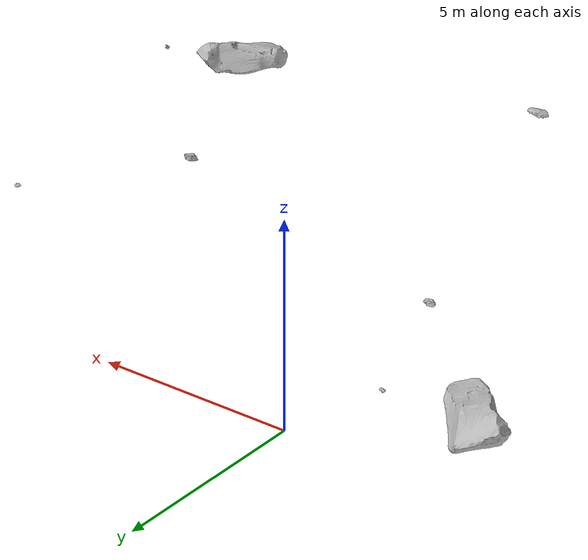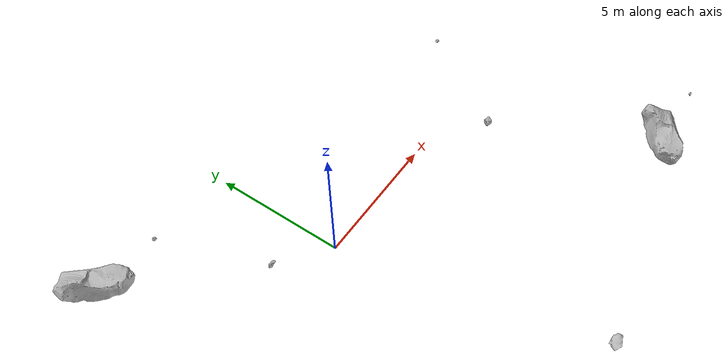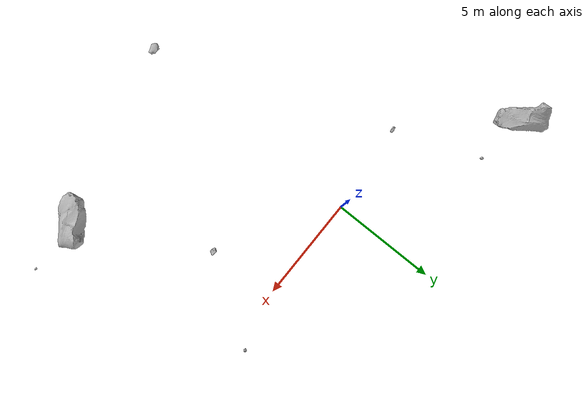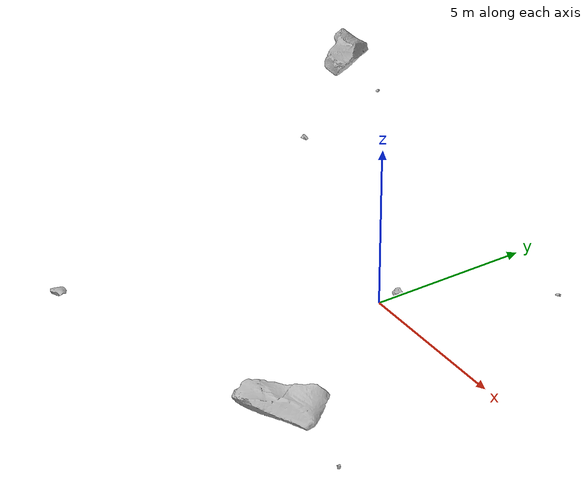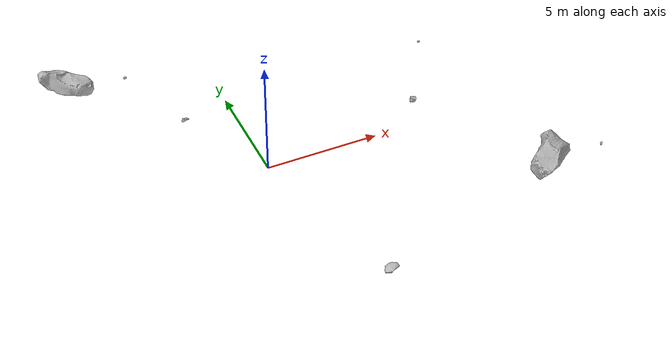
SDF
<sdf version="1.7">
 <world name="marsyard">
  <gravity>0 0 -9.81</gravity>
  <physics name="dart_physics" type="ignored">
   <max_step_size>0.003</max_step_size>
   <real_time_update_rate>333</real_time_update_rate>
   <real_time_factor>1.0</real_time_factor>
  </physics>
  <plugin filename="ignition-gazebo-physics-system" name="ignition::gazebo::systems::Physics"/>
  <plugin filename="ignition-gazebo-user-commands-system" name="ignition::gazebo::systems::UserCommands"/>
  <plugin filename="ignition-gazebo-scene-broadcaster-system" name="ignition::gazebo::systems::SceneBroadcaster"/>
  <plugin filename="ignition-gazebo-contact-system" name="ignition::gazebo::systems::Contact"/>
  <scene>
   <ambient>0.95 0.95 0.95 1</ambient>
   <background>0.70 0.70 0.70 1</background>
   <shadows>false</shadows>
  </scene>
  <light type="directional" name="sun">
   <cast_shadows>false</cast_shadows>
   <pose>0 0 30 0 0 0</pose>
   <diffuse>1 1 1 1</diffuse>
   <specular>0.15 0.15 0.15 1</specular>
   <direction>-0.35 0.1 -0.93</direction>
  </light>
  <model name="Rock_1">
   <static>true</static>
   <pose>7.3875 -7.9497 4.0000 0.0000 0.0000 0.7894</pose>
   <link name="link">
    <visual name="visual">
     <geometry><mesh><uri>package://rock_generator/rocks_ws/rock_4/meshes/rock_4.stl</uri></mesh></geometry>
    </visual>
    <collision name="collision">
     <geometry><mesh><uri>package://rock_generator/rocks_ws/rock_4/meshes/rock_4.stl</uri></mesh></geometry>
    </collision>
   </link>
  </model>
  <model name="Rock_2">
   <static>true</static>
   <pose>7.0543 0.4929 4.0000 0.0000 0.0000 -2.1552</pose>
   <link name="link">
    <visual name="visual">
     <geometry><mesh><uri>package://rock_generator/rocks_ws/rock_5/meshes/rock_5.stl</uri></mesh></geometry>
    </visual>
    <collision name="collision">
     <geometry><mesh><uri>package://rock_generator/rocks_ws/rock_5/meshes/rock_5.stl</uri></mesh></geometry>
    </collision>
   </link>
  </model>
  <model name="Rock_3">
   <static>true</static>
   <pose>4.8764 -2.8741 4.0000 0.0000 0.0000 -1.1982</pose>
   <link name="link">
    <visual name="visual">
     <geometry><mesh><uri>package://rock_generator/rocks_ws/rock_1/meshes/rock_1.stl</uri></mesh></geometry>
    </visual>
    <collision name="collision">
     <geometry><mesh><uri>package://rock_generator/rocks_ws/rock_1/meshes/rock_1.stl</uri></mesh></geometry>
    </collision>
   </link>
  </model>
  <model name="Rock_4">
   <static>true</static>
   <pose>-4.6844 3.0837 4.0000 0.0000 0.0000 -0.3046</pose>
   <link name="link">
    <visual name="visual">
     <geometry><mesh><uri>package://rock_generator/rocks_ws/rock_5/meshes/rock_5.stl</uri></mesh></geometry>
    </visual>
    <collision name="collision">
     <geometry><mesh><uri>package://rock_generator/rocks_ws/rock_5/meshes/rock_5.stl</uri></mesh></geometry>
    </collision>
   </link>
  </model>
  <model name="Rock_5">
   <static>true</static>
   <pose>9.7645 -7.8967 4.0000 0.0000 0.0000 -0.0548</pose>
   <link name="link">
    <visual name="visual">
     <geometry><mesh><uri>package://rock_generator/rocks_ws/rock_9/meshes/rock_9.stl</uri></mesh></geometry>
    </visual>
    <collision name="collision">
     <geometry><mesh><uri>package://rock_generator/rocks_ws/rock_9/meshes/rock_9.stl</uri></mesh></geometry>
    </collision>
   </link>
  </model>
  <model name="Rock_9">
   <static>true</static>
   <pose>-6.8479 3.2902 4.0000 0.0000 0.0000 2.4137</pose>
   <link name="link">
    <visual name="visual">
     <geometry><mesh><uri>package://rock_generator/rocks_ws/rock_4/meshes/rock_4.stl</uri></mesh></geometry>
    </visual>
    <collision name="collision">
     <geometry><mesh><uri>package://rock_generator/rocks_ws/rock_4/meshes/rock_4.stl</uri></mesh></geometry>
    </collision>
   </link>
  </model>
  <model name="Rock_10">
   <static>true</static>
   <pose>-3.3699 -0.3908 4.0000 0.0000 0.0000 -0.1019</pose>
   <link name="link">
    <visual name="visual">
     <geometry><mesh><uri>package://rock_generator/rocks_ws/rock_6/meshes/rock_6.stl</uri></mesh></geometry>
    </visual>
    <collision name="collision">
     <geometry><mesh><uri>package://rock_generator/rocks_ws/rock_6/meshes/rock_6.stl</uri></mesh></geometry>
    </collision>
   </link>
  </model>
  <model name="Rock_12">
   <static>true</static>
   <pose>0.0782 -9.9420 4.0000 0.0000 0.0000 -3.0951</pose>
   <link name="link">
    <visual name="visual">
     <geometry><mesh><uri>package://rock_generator/rocks_ws/rock_8/meshes/rock_8.stl</uri></mesh></geometry>
    </visual>
    <collision name="collision">
     <geometry><mesh><uri>package://rock_generator/rocks_ws/rock_8/meshes/rock_8.stl</uri></mesh></geometry>
    </collision>
   </link>
  </model>
 </world>
</sdf>
